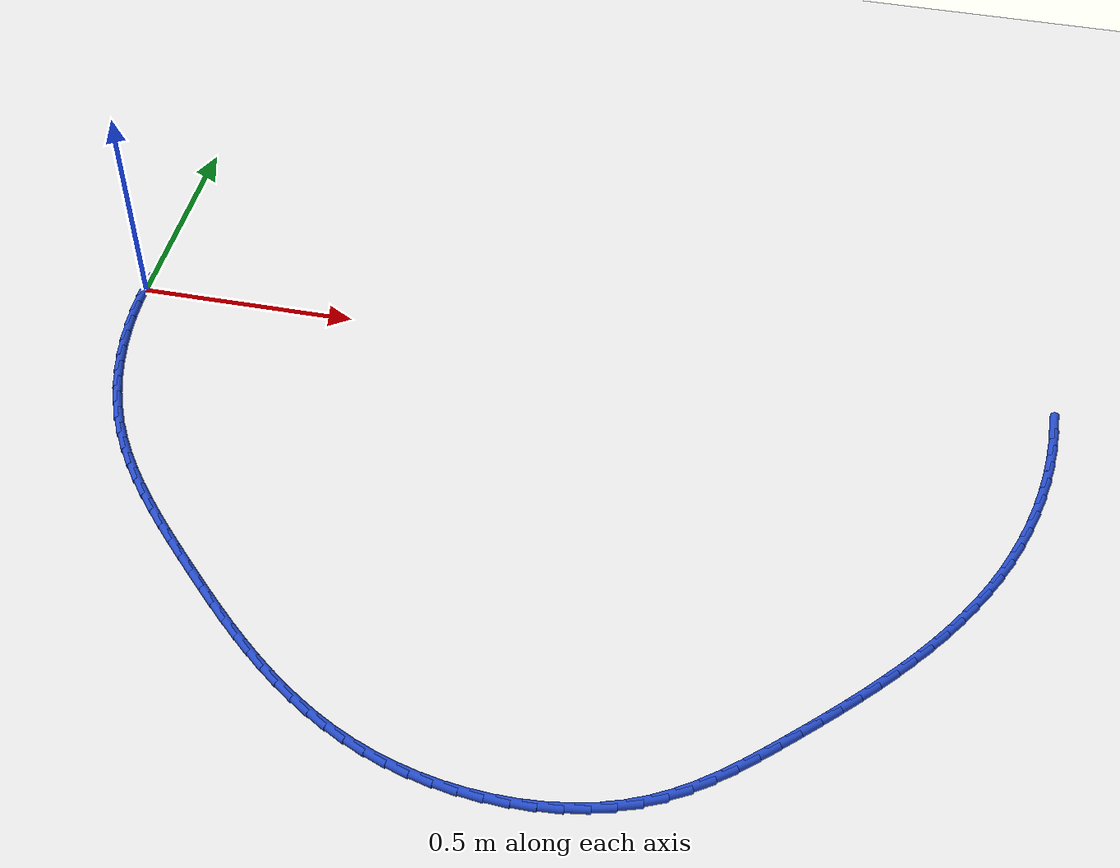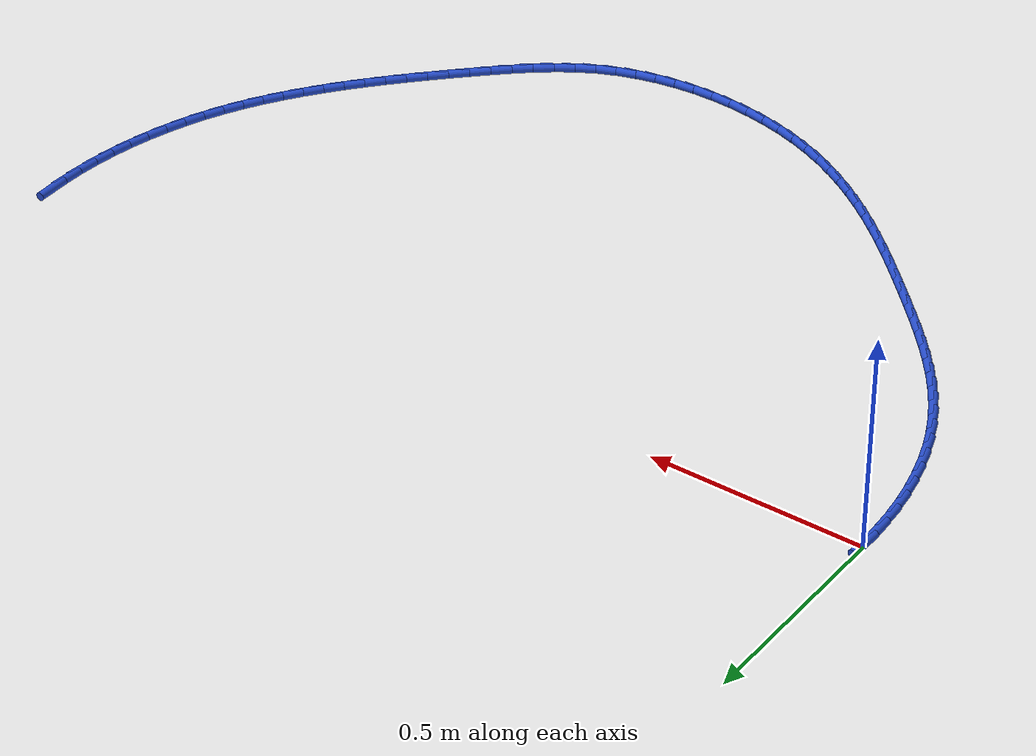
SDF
<sdf version="1.6">
 <world name="default">
  <model name="ground_plane">
   <static>1</static>
   <link name="link">
    <collision name="collision">
     <geometry><plane><normal>0 0 1</normal><size>100 100</size></plane></geometry>
     <surface><friction><ode><mu>100</mu><mu2>50</mu2></ode></friction></surface>
    </collision>
    <visual name="visual">
     <cast_shadows>0</cast_shadows>
     <geometry><plane><normal>0 0 1</normal><size>100 100</size></plane></geometry>
     <material>
      <script><uri>file://media/materials/scripts/gazebo.material</uri><name>Gazebo/WhiteGlow</name></script>
     </material>
    </visual>
   </link>
  </model>
  <model name="line">
   <link name="link_70">
    <pose>2.1115378584333295 -0.02444876796239864 0.01 0 1.57 -1.5651944066962005</pose>
    <collision name="collision">
     <geometry><cylinder><radius>0.01</radius><length>0.08</length></cylinder></geometry>
    </collision>
    <visual name="visual">
     <material>
      <script><name>Gazebo/Blue</name><uri>file://media/materials/scripts/gazebo.material</uri></script>
     </material>
     <geometry><cylinder><radius>0.01</radius><length>0.08</length></cylinder></geometry>
    </visual>
   </link>
   <link name="link_71">
    <pose>2.1118142032947085 -0.0737786344720963 0.01 0 1.57 1.5246943836477027</pose>
    <collision name="collision">
     <geometry><cylinder><radius>0.01</radius><length>0.08</length></cylinder></geometry>
    </collision>
    <visual name="visual">
     <material>
      <script><name>Gazebo/Blue</name><uri>file://media/materials/scripts/gazebo.material</uri></script>
     </material>
     <geometry><cylinder><radius>0.01</radius><length>0.08</length></cylinder></geometry>
    </visual>
   </link>
   <link name="link_72">
    <pose>2.109523235583701 -0.12343694079758319 0.01 0 1.57 1.4746183715994559</pose>
    <collision name="collision">
     <geometry><cylinder><radius>0.01</radius><length>0.08</length></cylinder></geometry>
    </collision>
    <visual name="visual">
     <material>
      <script><name>Gazebo/Blue</name><uri>file://media/materials/scripts/gazebo.material</uri></script>
     </material>
     <geometry><cylinder><radius>0.01</radius><length>0.08</length></cylinder></geometry>
    </visual>
   </link>
   <link name="link_73">
    <pose>2.104721432382888 -0.17320913832509752 0.01 0 1.57 1.4257394877952736</pose>
    <collision name="collision">
     <geometry><cylinder><radius>0.01</radius><length>0.08</length></cylinder></geometry>
    </collision>
    <visual name="visual">
     <material>
      <script><name>Gazebo/Blue</name><uri>file://media/materials/scripts/gazebo.material</uri></script>
     </material>
     <geometry><cylinder><radius>0.01</radius><length>0.08</length></cylinder></geometry>
    </visual>
   </link>
   <link name="link_74">
    <pose>2.097465270774854 -0.22288067844087514 0.01 0 1.57 1.3776361868793363</pose>
    <collision name="collision">
     <geometry><cylinder><radius>0.01</radius><length>0.08</length></cylinder></geometry>
    </collision>
    <visual name="visual">
     <material>
      <script><name>Gazebo/Blue</name><uri>file://media/materials/scripts/gazebo.material</uri></script>
     </material>
     <geometry><cylinder><radius>0.01</radius><length>0.08</length></cylinder></geometry>
    </visual>
   </link>
   <link name="link_75">
    <pose>2.087811227842178 -0.27223701253115423 0.01 0 1.57 1.3298928150577152</pose>
    <collision name="collision">
     <geometry><cylinder><radius>0.01</radius><length>0.08</length></cylinder></geometry>
    </collision>
    <visual name="visual">
     <material>
      <script><name>Gazebo/Blue</name><uri>file://media/materials/scripts/gazebo.material</uri></script>
     </material>
     <geometry><cylinder><radius>0.01</radius><length>0.08</length></cylinder></geometry>
    </visual>
   </link>
   <link name="link_76">
    <pose>2.075815780667444 -0.32106359198217227 0.01 0 1.57 1.2820952724784065</pose>
    <collision name="collision">
     <geometry><cylinder><radius>0.01</radius><length>0.08</length></cylinder></geometry>
    </collision>
    <visual name="visual">
     <material>
      <script><name>Gazebo/Blue</name><uri>file://media/materials/scripts/gazebo.material</uri></script>
     </material>
     <geometry><cylinder><radius>0.01</radius><length>0.08</length></cylinder></geometry>
    </visual>
   </link>
   <link name="link_77">
    <pose>2.0615354063332347 -0.3691458681801667 0.01 0 1.57 1.2338261303220057</pose>
    <collision name="collision">
     <geometry><cylinder><radius>0.01</radius><length>0.08</length></cylinder></geometry>
    </collision>
    <visual name="visual">
     <material>
      <script><name>Gazebo/Blue</name><uri>file://media/materials/scripts/gazebo.material</uri></script>
     </material>
     <geometry><cylinder><radius>0.01</radius><length>0.08</length></cylinder></geometry>
    </visual>
   </link>
   <link name="link_78">
    <pose>2.0450265819221305 -0.41626929251137557 0.01 0 1.57 1.1846596669359886</pose>
    <collision name="collision">
     <geometry><cylinder><radius>0.01</radius><length>0.08</length></cylinder></geometry>
    </collision>
    <visual name="visual">
     <material>
      <script><name>Gazebo/Blue</name><uri>file://media/materials/scripts/gazebo.material</uri></script>
     </material>
     <geometry><cylinder><radius>0.01</radius><length>0.08</length></cylinder></geometry>
    </visual>
   </link>
   <link name="link_79">
    <pose>2.0263457852430027 -0.462219318992902 0.01 0 1.57 1.1349348594426238</pose>
    <collision name="collision">
     <geometry><cylinder><radius>0.01</radius><length>0.08</length></cylinder></geometry>
    </collision>
    <visual name="visual">
     <material>
      <script><name>Gazebo/Blue</name><uri>file://media/materials/scripts/gazebo.material</uri></script>
     </material>
     <geometry><cylinder><radius>0.01</radius><length>0.08</length></cylinder></geometry>
    </visual>
   </link>
   <link name="link_80">
    <pose>2.005565195083401 -0.5068382760343407 0.01 0 1.57 1.0873161670758835</pose>
    <collision name="collision">
     <geometry><cylinder><radius>0.01</radius><length>0.08</length></cylinder></geometry>
    </collision>
    <visual name="visual">
     <material>
      <script><name>Gazebo/Blue</name><uri>file://media/materials/scripts/gazebo.material</uri></script>
     </material>
     <geometry><cylinder><radius>0.01</radius><length>0.08</length></cylinder></geometry>
    </visual>
   </link>
   <link name="link_81">
    <pose>1.9828131665091597 -0.5501719820165304 0.01 0 1.57 1.042703758907442</pose>
    <collision name="collision">
     <geometry><cylinder><radius>0.01</radius><length>0.08</length></cylinder></geometry>
    </collision>
    <visual name="visual">
     <material>
      <script><name>Gazebo/Blue</name><uri>file://media/materials/scripts/gazebo.material</uri></script>
     </material>
     <geometry><cylinder><radius>0.01</radius><length>0.08</length></cylinder></geometry>
    </visual>
   </link>
   <link name="link_82">
    <pose>1.9582306133185536 -0.5923117474066567 0.01 0 1.57 1.001337980167166</pose>
    <collision name="collision">
     <geometry><cylinder><radius>0.01</radius><length>0.08</length></cylinder></geometry>
    </collision>
    <visual name="visual">
     <material>
      <script><name>Gazebo/Blue</name><uri>file://media/materials/scripts/gazebo.material</uri></script>
     </material>
     <geometry><cylinder><radius>0.01</radius><length>0.08</length></cylinder></geometry>
    </visual>
   </link>
   <link name="link_83">
    <pose>1.9319584493098567 -0.6333488826719039 0.01 0 1.57 0.9633847790127246</pose>
    <collision name="collision">
     <geometry><cylinder><radius>0.01</radius><length>0.08</length></cylinder></geometry>
    </collision>
    <visual name="visual">
     <material>
      <script><name>Gazebo/Blue</name><uri>file://media/materials/scripts/gazebo.material</uri></script>
     </material>
     <geometry><cylinder><radius>0.01</radius><length>0.08</length></cylinder></geometry>
    </visual>
   </link>
   <link name="link_84">
    <pose>1.904137588281341 -0.6733746982794568 0.01 0 1.57 0.9289454710597488</pose>
    <collision name="collision">
     <geometry><cylinder><radius>0.01</radius><length>0.08</length></cylinder></geometry>
    </collision>
    <visual name="visual">
     <material>
      <script><name>Gazebo/Blue</name><uri>file://media/materials/scripts/gazebo.material</uri></script>
     </material>
     <geometry><cylinder><radius>0.01</radius><length>0.08</length></cylinder></geometry>
    </visual>
   </link>
   <link name="link_85">
    <pose>1.8749089440312803 -0.7124805046965013 0.01 0 1.57 0.8980685523963648</pose>
    <collision name="collision">
     <geometry><cylinder><radius>0.01</radius><length>0.08</length></cylinder></geometry>
    </collision>
    <visual name="visual">
     <material>
      <script><name>Gazebo/Blue</name><uri>file://media/materials/scripts/gazebo.material</uri></script>
     </material>
     <geometry><cylinder><radius>0.01</radius><length>0.08</length></cylinder></geometry>
    </visual>
   </link>
   <link name="link_86">
    <pose>1.8444134303579478 -0.750757612390222 0.01 0 1.57 0.8707620480177009</pose>
    <collision name="collision">
     <geometry><cylinder><radius>0.01</radius><length>0.08</length></cylinder></geometry>
    </collision>
    <visual name="visual">
     <material>
      <script><name>Gazebo/Blue</name><uri>file://media/materials/scripts/gazebo.material</uri></script>
     </material>
     <geometry><cylinder><radius>0.01</radius><length>0.08</length></cylinder></geometry>
    </visual>
   </link>
   <link name="link_87">
    <pose>1.8127919610596166 -0.7882973318278047 0.01 0 1.57 0.8470052985216541</pose>
    <collision name="collision">
     <geometry><cylinder><radius>0.01</radius><length>0.08</length></cylinder></geometry>
    </collision>
    <visual name="visual">
     <material>
      <script><name>Gazebo/Blue</name><uri>file://media/materials/scripts/gazebo.material</uri></script>
     </material>
     <geometry><cylinder><radius>0.01</radius><length>0.08</length></cylinder></geometry>
    </visual>
   </link>
   <link name="link_88">
    <pose>1.7801854499345608 -0.825190973476433 0.01 0 1.57 0.8267595057420533</pose>
    <collision name="collision">
     <geometry><cylinder><radius>0.01</radius><length>0.08</length></cylinder></geometry>
    </collision>
    <visual name="visual">
     <material>
      <script><name>Gazebo/Blue</name><uri>file://media/materials/scripts/gazebo.material</uri></script>
     </material>
     <geometry><cylinder><radius>0.01</radius><length>0.08</length></cylinder></geometry>
    </visual>
   </link>
   <link name="link_89">
    <pose>1.7467348107810527 -0.8615298478032929 0.01 0 1.57 0.8099767058446594</pose>
    <collision name="collision">
     <geometry><cylinder><radius>0.01</radius><length>0.08</length></cylinder></geometry>
    </collision>
    <visual name="visual">
     <material>
      <script><name>Gazebo/Blue</name><uri>file://media/materials/scripts/gazebo.material</uri></script>
     </material>
     <geometry><cylinder><radius>0.01</radius><length>0.08</length></cylinder></geometry>
    </visual>
   </link>
   <link name="link_90">
    <pose>1.7125809573973665 -0.8974052652755692 0.01 0 1.57 0.7966070889284098</pose>
    <collision name="collision">
     <geometry><cylinder><radius>0.01</radius><length>0.08</length></cylinder></geometry>
    </collision>
    <visual name="visual">
     <material>
      <script><name>Gazebo/Blue</name><uri>file://media/materials/scripts/gazebo.material</uri></script>
     </material>
     <geometry><cylinder><radius>0.01</radius><length>0.08</length></cylinder></geometry>
    </visual>
   </link>
   <link name="link_91">
    <pose>1.6778648035817745 -0.9329085363604479 0.01 0 1.57 0.7865780863257071</pose>
    <collision name="collision">
     <geometry><cylinder><radius>0.01</radius><length>0.08</length></cylinder></geometry>
    </collision>
    <visual name="visual">
     <material>
      <script><name>Gazebo/Blue</name><uri>file://media/materials/scripts/gazebo.material</uri></script>
     </material>
     <geometry><cylinder><radius>0.01</radius><length>0.08</length></cylinder></geometry>
    </visual>
   </link>
   <link name="link_92">
    <pose>1.6427265403020028 -0.9681298185196316 0.01 0 1.57 0.7748879341417741</pose>
    <collision name="collision">
     <geometry><cylinder><radius>0.01</radius><length>0.08</length></cylinder></geometry>
    </collision>
    <visual name="visual">
     <material>
      <script><name>Gazebo/Blue</name><uri>file://media/materials/scripts/gazebo.material</uri></script>
     </material>
     <geometry><cylinder><radius>0.01</radius><length>0.08</length></cylinder></geometry>
    </visual>
   </link>
   <link name="link_93">
    <pose>1.607171915315021 -1.002944815413491 0.01 0 1.57 0.7506419862285526</pose>
    <collision name="collision">
     <geometry><cylinder><radius>0.01</radius><length>0.08</length></cylinder></geometry>
    </collision>
    <visual name="visual">
     <material>
      <script><name>Gazebo/Blue</name><uri>file://media/materials/scripts/gazebo.material</uri></script>
     </material>
     <geometry><cylinder><radius>0.01</radius><length>0.08</length></cylinder></geometry>
    </visual>
   </link>
   <link name="link_94">
    <pose>1.5709154598820536 -1.036764703827637 0.01 0 1.57 0.7120081084481795</pose>
    <collision name="collision">
     <geometry><cylinder><radius>0.01</radius><length>0.08</length></cylinder></geometry>
    </collision>
    <visual name="visual">
     <material>
      <script><name>Gazebo/Blue</name><uri>file://media/materials/scripts/gazebo.material</uri></script>
     </material>
     <geometry><cylinder><radius>0.01</radius><length>0.08</length></cylinder></geometry>
    </visual>
   </link>
   <link name="link_95">
    <pose>1.5336336222612401 -1.0689399133762032 0.01 0 1.57 0.6583732010709324</pose>
    <collision name="collision">
     <geometry><cylinder><radius>0.01</radius><length>0.08</length></cylinder></geometry>
    </collision>
    <visual name="visual">
     <material>
      <script><name>Gazebo/Blue</name><uri>file://media/materials/scripts/gazebo.material</uri></script>
     </material>
     <geometry><cylinder><radius>0.01</radius><length>0.08</length></cylinder></geometry>
    </visual>
   </link>
   <link name="link_96">
    <pose>1.4950028507107207 -1.0988208736733214 0.01 0 1.57 0.5891749498678595</pose>
    <collision name="collision">
     <geometry><cylinder><radius>0.01</radius><length>0.08</length></cylinder></geometry>
    </collision>
    <visual name="visual">
     <material>
      <script><name>Gazebo/Blue</name><uri>file://media/materials/scripts/gazebo.material</uri></script>
     </material>
     <geometry><cylinder><radius>0.01</radius><length>0.08</length></cylinder></geometry>
    </visual>
   </link>
   <link name="link_97">
    <pose>1.4546995934886349 -1.1257580143331247 0.01 0 1.57 0.5042784827849761</pose>
    <collision name="collision">
     <geometry><cylinder><radius>0.01</radius><length>0.08</length></cylinder></geometry>
    </collision>
    <visual name="visual">
     <material>
      <script><name>Gazebo/Blue</name><uri>file://media/materials/scripts/gazebo.material</uri></script>
     </material>
     <geometry><cylinder><radius>0.01</radius><length>0.08</length></cylinder></geometry>
    </visual>
   </link>
   <link name="link_98">
    <pose>1.4124002988531212 -1.149101764969746 0.01 0 1.57 0.40746307798080894</pose>
    <collision name="collision">
     <geometry><cylinder><radius>0.01</radius><length>0.08</length></cylinder></geometry>
    </collision>
    <visual name="visual">
     <material>
      <script><name>Gazebo/Blue</name><uri>file://media/materials/scripts/gazebo.material</uri></script>
     </material>
     <geometry><cylinder><radius>0.01</radius><length>0.08</length></cylinder></geometry>
    </visual>
   </link>
   <link name="link_99">
    <pose>1.3678827063409744 -1.1683163753618857 0.01 0 1.57 0.31351237624140865</pose>
    <collision name="collision">
     <geometry><cylinder><radius>0.01</radius><length>0.08</length></cylinder></geometry>
    </collision>
    <visual name="visual">
     <material>
      <script><name>Gazebo/Blue</name><uri>file://media/materials/scripts/gazebo.material</uri></script>
     </material>
     <geometry><cylinder><radius>0.01</radius><length>0.08</length></cylinder></geometry>
    </visual>
   </link>
   <link name="link_100">
    <pose>1.3213902874313008 -1.1833894343853788 0.01 0 1.57 0.22624048906095473</pose>
    <collision name="collision">
     <geometry><cylinder><radius>0.01</radius><length>0.08</length></cylinder></geometry>
    </collision>
    <visual name="visual">
     <material>
      <script><name>Gazebo/Blue</name><uri>file://media/materials/scripts/gazebo.material</uri></script>
     </material>
     <geometry><cylinder><radius>0.01</radius><length>0.08</length></cylinder></geometry>
    </visual>
   </link>
   <link name="link_101">
    <pose>1.2733002855395148 -1.194458849324585 0.01 0 1.57 0.14506272170341514</pose>
    <collision name="collision">
     <geometry><cylinder><radius>0.01</radius><length>0.08</length></cylinder></geometry>
    </collision>
    <visual name="visual">
     <material>
      <script><name>Gazebo/Blue</name><uri>file://media/materials/scripts/gazebo.material</uri></script>
     </material>
     <geometry><cylinder><radius>0.01</radius><length>0.08</length></cylinder></geometry>
    </visual>
   </link>
   <link name="link_102">
    <pose>1.223989955734656 -1.201662540558949 0.01 0 1.57 0.0691944829307622</pose>
    <collision name="collision">
     <geometry><cylinder><radius>0.01</radius><length>0.08</length></cylinder></geometry>
    </collision>
    <visual name="visual">
     <material>
      <script><name>Gazebo/Blue</name><uri>file://media/materials/scripts/gazebo.material</uri></script>
     </material>
     <geometry><cylinder><radius>0.01</radius><length>0.08</length></cylinder></geometry>
    </visual>
   </link>
   <link name="link_103">
    <pose>1.173836553085766 -1.205138428467916 0.01 0 1.57 -0.002252007109569772</pose>
    <collision name="collision">
     <geometry><cylinder><radius>0.01</radius><length>0.08</length></cylinder></geometry>
    </collision>
    <visual name="visual">
     <material>
      <script><name>Gazebo/Blue</name><uri>file://media/materials/scripts/gazebo.material</uri></script>
     </material>
     <geometry><cylinder><radius>0.01</radius><length>0.08</length></cylinder></geometry>
    </visual>
   </link>
   <link name="link_104">
    <pose>1.1232173326618848 -1.2050244334309306 0.01 0 1.57 -0.07020808996304896</pose>
    <collision name="collision">
     <geometry><cylinder><radius>0.01</radius><length>0.08</length></cylinder></geometry>
    </collision>
    <visual name="visual">
     <material>
      <script><name>Gazebo/Blue</name><uri>file://media/materials/scripts/gazebo.material</uri></script>
     </material>
     <geometry><cylinder><radius>0.01</radius><length>0.08</length></cylinder></geometry>
    </visual>
   </link>
   <link name="link_105">
    <pose>1.0725095495320538 -1.2014584758274367 0.01 0 1.57 -0.13561863064074142</pose>
    <collision name="collision">
     <geometry><cylinder><radius>0.01</radius><length>0.08</length></cylinder></geometry>
    </collision>
    <visual name="visual">
     <material>
      <script><name>Gazebo/Blue</name><uri>file://media/materials/scripts/gazebo.material</uri></script>
     </material>
     <geometry><cylinder><radius>0.01</radius><length>0.08</length></cylinder></geometry>
    </visual>
   </link>
   <link name="link_106">
    <pose>1.022090458765314 -1.1945784760368798 0.01 0 1.57 -0.1994335019708749</pose>
    <collision name="collision">
     <geometry><cylinder><radius>0.01</radius><length>0.08</length></cylinder></geometry>
    </collision>
    <visual name="visual">
     <material>
      <script><name>Gazebo/Blue</name><uri>file://media/materials/scripts/gazebo.material</uri></script>
     </material>
     <geometry><cylinder><radius>0.01</radius><length>0.08</length></cylinder></geometry>
    </visual>
   </link>
   <link name="link_107">
    <pose>0.9723373154307057 -1.1845223544387042 0.01 0 1.57 -0.26261392025755304</pose>
    <collision name="collision">
     <geometry><cylinder><radius>0.01</radius><length>0.08</length></cylinder></geometry>
    </collision>
    <visual name="visual">
     <material>
      <script><name>Gazebo/Blue</name><uri>file://media/materials/scripts/gazebo.material</uri></script>
     </material>
     <geometry><cylinder><radius>0.01</radius><length>0.08</length></cylinder></geometry>
    </visual>
   </link>
   <link name="link_108">
    <pose>0.9236273745972696 -1.1714280314123542 0.01 0 1.57 -0.3261212047789748</pose>
    <collision name="collision">
     <geometry><cylinder><radius>0.01</radius><length>0.08</length></cylinder></geometry>
    </collision>
    <visual name="visual">
     <material>
      <script><name>Gazebo/Blue</name><uri>file://media/materials/scripts/gazebo.material</uri></script>
     </material>
     <geometry><cylinder><radius>0.01</radius><length>0.08</length></cylinder></geometry>
    </visual>
   </link>
   <link name="link_109">
    <pose>0.8763348553531035 -1.1554338561496933 0.01 0 1.57 -0.3890983101071305</pose>
    <collision name="collision">
     <geometry><cylinder><radius>0.01</radius><length>0.08</length></cylinder></geometry>
    </collision>
    <visual name="visual">
     <material>
      <script><name>Gazebo/Blue</name><uri>file://media/materials/scripts/gazebo.material</uri></script>
     </material>
     <geometry><cylinder><radius>0.01</radius><length>0.08</length></cylinder></geometry>
    </visual>
   </link>
   <link name="link_110">
    <pose>0.8306520961407301 -1.1367038672921963 0.01 0 1.57 -0.4486972834981993</pose>
    <collision name="collision">
     <geometry><cylinder><radius>0.01</radius><length>0.08</length></cylinder></geometry>
    </collision>
    <visual name="visual">
     <material>
      <script><name>Gazebo/Blue</name><uri>file://media/materials/scripts/gazebo.material</uri></script>
     </material>
     <geometry><cylinder><radius>0.01</radius><length>0.08</length></cylinder></geometry>
    </visual>
   </link>
   <link name="link_111">
    <pose>0.7864896802570989 -1.115441899549755 0.01 0 1.57 -0.5041181809997564</pose>
    <collision name="collision">
     <geometry><cylinder><radius>0.01</radius><length>0.08</length></cylinder></geometry>
    </collision>
    <visual name="visual">
     <material>
      <script><name>Gazebo/Blue</name><uri>file://media/materials/scripts/gazebo.material</uri></script>
     </material>
     <geometry><cylinder><radius>0.01</radius><length>0.08</length></cylinder></geometry>
    </visual>
   </link>
   <link name="link_112">
    <pose>0.7437339726711542 -1.0918552083124287 0.01 0 1.57 -0.5549491424522279</pose>
    <collision name="collision">
     <geometry><cylinder><radius>0.01</radius><length>0.08</length></cylinder></geometry>
    </collision>
    <visual name="visual">
     <material>
      <script><name>Gazebo/Blue</name><uri>file://media/materials/scripts/gazebo.material</uri></script>
     </material>
     <geometry><cylinder><radius>0.01</radius><length>0.08</length></cylinder></geometry>
    </visual>
   </link>
   <link name="link_113">
    <pose>0.70227133835184 -1.0661510489702757 0.01 0 1.57 -0.6009320600229929</pose>
    <collision name="collision">
     <geometry><cylinder><radius>0.01</radius><length>0.08</length></cylinder></geometry>
    </collision>
    <visual name="visual">
     <material>
      <script><name>Gazebo/Blue</name><uri>file://media/materials/scripts/gazebo.material</uri></script>
     </material>
     <geometry><cylinder><radius>0.01</radius><length>0.08</length></cylinder></geometry>
    </visual>
   </link>
   <link name="link_114">
    <pose>0.6619881422681015 -1.038536676913355 0.01 0 1.57 -0.6419372726688846</pose>
    <collision name="collision">
     <geometry><cylinder><radius>0.01</radius><length>0.08</length></cylinder></geometry>
    </collision>
    <visual name="visual">
     <material>
      <script><name>Gazebo/Blue</name><uri>file://media/materials/scripts/gazebo.material</uri></script>
     </material>
     <geometry><cylinder><radius>0.01</radius><length>0.08</length></cylinder></geometry>
    </visual>
   </link>
   <link name="link_115">
    <pose>0.6227707493888833 -1.0092193475317257 0.01 0 1.57 -0.6779333255197937</pose>
    <collision name="collision">
     <geometry><cylinder><radius>0.01</radius><length>0.08</length></cylinder></geometry>
    </collision>
    <visual name="visual">
     <material>
      <script><name>Gazebo/Blue</name><uri>file://media/materials/scripts/gazebo.material</uri></script>
     </material>
     <geometry><cylinder><radius>0.01</radius><length>0.08</length></cylinder></geometry>
    </visual>
   </link>
   <link name="link_116">
    <pose>0.5845055246831296 -0.9784063162154466 0.01 0 1.57 -0.7089566660092739</pose>
    <collision name="collision">
     <geometry><cylinder><radius>0.01</radius><length>0.08</length></cylinder></geometry>
    </collision>
    <visual name="visual">
     <material>
      <script><name>Gazebo/Blue</name><uri>file://media/materials/scripts/gazebo.material</uri></script>
     </material>
     <geometry><cylinder><radius>0.01</radius><length>0.08</length></cylinder></geometry>
    </visual>
   </link>
   <link name="link_117">
    <pose>0.5470788331197843 -0.9463048383545754 0.01 0 1.57 -0.7350843414214909</pose>
    <collision name="collision">
     <geometry><cylinder><radius>0.01</radius><length>0.08</length></cylinder></geometry>
    </collision>
    <visual name="visual">
     <material>
      <script><name>Gazebo/Blue</name><uri>file://media/materials/scripts/gazebo.material</uri></script>
     </material>
     <geometry><cylinder><radius>0.01</radius><length>0.08</length></cylinder></geometry>
    </visual>
   </link>
   <link name="link_118">
    <pose>0.5103770396677928 -0.9131221693391716 0.01 0 1.57 -0.7564111507568014</pose>
    <collision name="collision">
     <geometry><cylinder><radius>0.01</radius><length>0.08</length></cylinder></geometry>
    </collision>
    <visual name="visual">
     <material>
      <script><name>Gazebo/Blue</name><uri>file://media/materials/scripts/gazebo.material</uri></script>
     </material>
     <geometry><cylinder><radius>0.01</radius><length>0.08</length></cylinder></geometry>
    </visual>
   </link>
   <link name="link_119">
    <pose>0.4742865092960994 -0.8790655645592942 0.01 0 1.57 -0.7730315538321838</pose>
    <collision name="collision">
     <geometry><cylinder><radius>0.01</radius><length>0.08</length></cylinder></geometry>
    </collision>
    <visual name="visual">
     <material>
      <script><name>Gazebo/Blue</name><uri>file://media/materials/scripts/gazebo.material</uri></script>
     </material>
     <geometry><cylinder><radius>0.01</radius><length>0.08</length></cylinder></geometry>
    </visual>
   </link>
   <link name="link_120">
    <pose>0.43869360697364845 -0.8443422794050015 0.01 0 1.57 -0.7850259718693596</pose>
    <collision name="collision">
     <geometry><cylinder><radius>0.01</radius><length>0.08</length></cylinder></geometry>
    </collision>
    <visual name="visual">
     <material>
      <script><name>Gazebo/Blue</name><uri>file://media/materials/scripts/gazebo.material</uri></script>
     </material>
     <geometry><cylinder><radius>0.01</radius><length>0.08</length></cylinder></geometry>
    </visual>
   </link>
   <link name="link_121">
    <pose>0.40348469766938433 -0.8091595692663522 0.01 0 1.57 -0.792471887474657</pose>
    <collision name="collision">
     <geometry><cylinder><radius>0.01</radius><length>0.08</length></cylinder></geometry>
    </collision>
    <visual name="visual">
     <material>
      <script><name>Gazebo/Blue</name><uri>file://media/materials/scripts/gazebo.material</uri></script>
     </material>
     <geometry><cylinder><radius>0.01</radius><length>0.08</length></cylinder></geometry>
    </visual>
   </link>
   <link name="link_122">
    <pose>0.36854688934298624 -0.7737239504307384 0.01 0 1.57 -0.7985898406414407</pose>
    <collision name="collision">
     <geometry><cylinder><radius>0.01</radius><length>0.08</length></cylinder></geometry>
    </collision>
    <visual name="visual">
     <material>
      <script><name>Gazebo/Blue</name><uri>file://media/materials/scripts/gazebo.material</uri></script>
     </material>
     <geometry><cylinder><radius>0.01</radius><length>0.08</length></cylinder></geometry>
    </visual>
   </link>
   <link name="link_123">
    <pose>0.3338798357462646 -0.7381299823452 0.01 0 1.57 -0.8100005408140426</pose>
    <collision name="collision">
     <geometry><cylinder><radius>0.01</radius><length>0.08</length></cylinder></geometry>
    </collision>
    <visual name="visual">
     <material>
      <script><name>Gazebo/Blue</name><uri>file://media/materials/scripts/gazebo.material</uri></script>
     </material>
     <geometry><cylinder><radius>0.01</radius><length>0.08</length></cylinder></geometry>
    </visual>
   </link>
   <link name="link_124">
    <pose>0.2997151525772188 -0.7022414763667242 0.01 0 1.57 -0.8276043705538363</pose>
    <collision name="collision">
     <geometry><cylinder><radius>0.01</radius><length>0.08</length></cylinder></geometry>
    </collision>
    <visual name="visual">
     <material>
      <script><name>Gazebo/Blue</name><uri>file://media/materials/scripts/gazebo.material</uri></script>
     </material>
     <geometry><cylinder><radius>0.01</radius><length>0.08</length></cylinder></geometry>
    </visual>
   </link>
   <link name="link_125">
    <pose>0.2663130741481002 -0.665893774999166 0.01 0 1.57 -0.8515202645048937</pose>
    <collision name="collision">
     <geometry><cylinder><radius>0.01</radius><length>0.08</length></cylinder></geometry>
    </collision>
    <visual name="visual">
     <material>
      <script><name>Gazebo/Blue</name><uri>file://media/materials/scripts/gazebo.material</uri></script>
     </material>
     <geometry><cylinder><radius>0.01</radius><length>0.08</length></cylinder></geometry>
    </visual>
   </link>
   <link name="link_126">
    <pose>0.2339338347711593 -0.6289222207463799 0.01 0 1.57 -0.8818775849640315</pose>
    <collision name="collision">
     <geometry><cylinder><radius>0.01</radius><length>0.08</length></cylinder></geometry>
    </collision>
    <visual name="visual">
     <material>
      <script><name>Gazebo/Blue</name><uri>file://media/materials/scripts/gazebo.material</uri></script>
     </material>
     <geometry><cylinder><radius>0.01</radius><length>0.08</length></cylinder></geometry>
    </visual>
   </link>
   <link name="link_127">
    <pose>0.2028376687586485 -0.5911621561122213 0.01 0 1.57 -0.9187876699716575</pose>
    <collision name="collision">
     <geometry><cylinder><radius>0.01</radius><length>0.08</length></cylinder></geometry>
    </collision>
    <visual name="visual">
     <material>
      <script><name>Gazebo/Blue</name><uri>file://media/materials/scripts/gazebo.material</uri></script>
     </material>
     <geometry><cylinder><radius>0.01</radius><length>0.08</length></cylinder></geometry>
    </visual>
   </link>
   <link name="link_128">
    <pose>0.17328481042281832 -0.5524489236005452 0.01 0 1.57 -0.9623051553802091</pose>
    <collision name="collision">
     <geometry><cylinder><radius>0.01</radius><length>0.08</length></cylinder></geometry>
    </collision>
    <visual name="visual">
     <material>
      <script><name>Gazebo/Blue</name><uri>file://media/materials/scripts/gazebo.material</uri></script>
     </material>
     <geometry><cylinder><radius>0.01</radius><length>0.08</length></cylinder></geometry>
    </visual>
   </link>
   <link name="link_129">
    <pose>0.14553549407592017 -0.5126178657152062 0.01 0 1.57 -1.0123793356162831</pose>
    <collision name="collision">
     <geometry><cylinder><radius>0.01</radius><length>0.08</length></cylinder></geometry>
    </collision>
    <visual name="visual">
     <material>
      <script><name>Gazebo/Blue</name><uri>file://media/materials/scripts/gazebo.material</uri></script>
     </material>
     <geometry><cylinder><radius>0.01</radius><length>0.08</length></cylinder></geometry>
    </visual>
   </link>
   <link name="link_130">
    <pose>0.11984995403020517 -0.47150432496005923 0.01 0 1.57 -1.068796446352719</pose>
    <collision name="collision">
     <geometry><cylinder><radius>0.01</radius><length>0.08</length></cylinder></geometry>
    </collision>
    <visual name="visual">
     <material>
      <script><name>Gazebo/Blue</name><uri>file://media/materials/scripts/gazebo.material</uri></script>
     </material>
     <geometry><cylinder><radius>0.01</radius><length>0.08</length></cylinder></geometry>
    </visual>
   </link>
   <link name="link_131">
    <pose>0.09648835814903743 -0.42894373516841194 0.01 0 1.57 -1.1292525179334914</pose>
    <collision name="collision">
     <geometry><cylinder><radius>0.01</radius><length>0.08</length></cylinder></geometry>
    </collision>
    <visual name="visual">
     <material>
      <script><name>Gazebo/Blue</name><uri>file://media/materials/scripts/gazebo.material</uri></script>
     </material>
     <geometry><cylinder><radius>0.01</radius><length>0.08</length></cylinder></geometry>
    </visual>
   </link>
   <link name="link_132">
    <pose>0.07564946840365175 -0.38485592837550253 0.01 0 1.57 -1.188193850124566</pose>
    <collision name="collision">
     <geometry><cylinder><radius>0.01</radius><length>0.08</length></cylinder></geometry>
    </collision>
    <visual name="visual">
     <material>
      <script><name>Gazebo/Blue</name><uri>file://media/materials/scripts/gazebo.material</uri></script>
     </material>
     <geometry><cylinder><radius>0.01</radius><length>0.08</length></cylinder></geometry>
    </visual>
   </link>
   <link name="link_133">
    <pose>0.05735700835097127 -0.3394013149539832 0.01 0 1.57 -1.2449236247940751</pose>
    <collision name="collision">
     <geometry><cylinder><radius>0.01</radius><length>0.08</length></cylinder></geometry>
    </collision>
    <visual name="visual">
     <material>
      <script><name>Gazebo/Blue</name><uri>file://media/materials/scripts/gazebo.material</uri></script>
     </material>
     <geometry><cylinder><radius>0.01</radius><length>0.08</length></cylinder></geometry>
    </visual>
   </link>
   <link name="link_134">
    <pose>0.04160371823649651 -0.29278288972049354 0.01 0 1.57 -1.2997534066307879</pose>
    <collision name="collision">
     <geometry><cylinder><radius>0.01</radius><length>0.08</length></cylinder></geometry>
    </collision>
    <visual name="visual">
     <material>
      <script><name>Gazebo/Blue</name><uri>file://media/materials/scripts/gazebo.material</uri></script>
     </material>
     <geometry><cylinder><radius>0.01</radius><length>0.08</length></cylinder></geometry>
    </visual>
   </link>
   <link name="link_135">
    <pose>0.028382338305727877 -0.2452036474916726 0.01 0 1.57 -1.3530115599060093</pose>
    <collision name="collision">
     <geometry><cylinder><radius>0.01</radius><length>0.08</length></cylinder></geometry>
    </collision>
    <visual name="visual">
     <material>
      <script><name>Gazebo/Blue</name><uri>file://media/materials/scripts/gazebo.material</uri></script>
     </material>
     <geometry><cylinder><radius>0.01</radius><length>0.08</length></cylinder></geometry>
    </visual>
   </link>
   <link name="link_136">
    <pose>0.01768560880416632 -0.19686658308416144 0.01 0 1.57 -1.4050369613968658</pose>
    <collision name="collision">
     <geometry><cylinder><radius>0.01</radius><length>0.08</length></cylinder></geometry>
    </collision>
    <visual name="visual">
     <material>
      <script><name>Gazebo/Blue</name><uri>file://media/materials/scripts/gazebo.material</uri></script>
     </material>
     <geometry><cylinder><radius>0.01</radius><length>0.08</length></cylinder></geometry>
    </visual>
   </link>
   <link name="link_137">
    <pose>0.009506269977312194 -0.14797469131459898 0.01 0 1.57 -1.4561754494256869</pose>
    <collision name="collision">
     <geometry><cylinder><radius>0.01</radius><length>0.08</length></cylinder></geometry>
    </collision>
    <visual name="visual">
     <material>
      <script><name>Gazebo/Blue</name><uri>file://media/materials/scripts/gazebo.material</uri></script>
     </material>
     <geometry><cylinder><radius>0.01</radius><length>0.08</length></cylinder></geometry>
    </visual>
   </link>
   <link name="link_138">
    <pose>0.0038370620706660585 -0.09873096699962494 0.01 0 1.57 -1.50677838767893</pose>
    <collision name="collision">
     <geometry><cylinder><radius>0.01</radius><length>0.08</length></cylinder></geometry>
    </collision>
    <visual name="visual">
     <material>
      <script><name>Gazebo/Blue</name><uri>file://media/materials/scripts/gazebo.material</uri></script>
     </material>
     <geometry><cylinder><radius>0.01</radius><length>0.08</length></cylinder></geometry>
    </visual>
   </link>
   <link name="link_139">
    <pose>0.0006707253297284603 -0.049338404955879045 0.01 0 1.57 -1.5572027779846156</pose>
    <collision name="collision">
     <geometry><cylinder><radius>0.01</radius><length>0.08</length></cylinder></geometry>
    </collision>
    <visual name="visual">
     <material>
      <script><name>Gazebo/Blue</name><uri>file://media/materials/scripts/gazebo.material</uri></script>
     </material>
     <geometry><cylinder><radius>0.01</radius><length>0.08</length></cylinder></geometry>
    </visual>
   </link>
   <link name="link_140">
    <pose>-1.5612511283791264e-17 -4.163336342344337e-17 0.01 0 1.57 1.533780236675863</pose>
    <collision name="collision">
     <geometry><cylinder><radius>0.01</radius><length>0.08</length></cylinder></geometry>
    </collision>
    <visual name="visual">
     <material>
      <script><name>Gazebo/Blue</name><uri>file://media/materials/scripts/gazebo.material</uri></script>
     </material>
     <geometry><cylinder><radius>0.01</radius><length>0.08</length></cylinder></geometry>
    </visual>
   </link>
  </model>
 </world>
</sdf>
